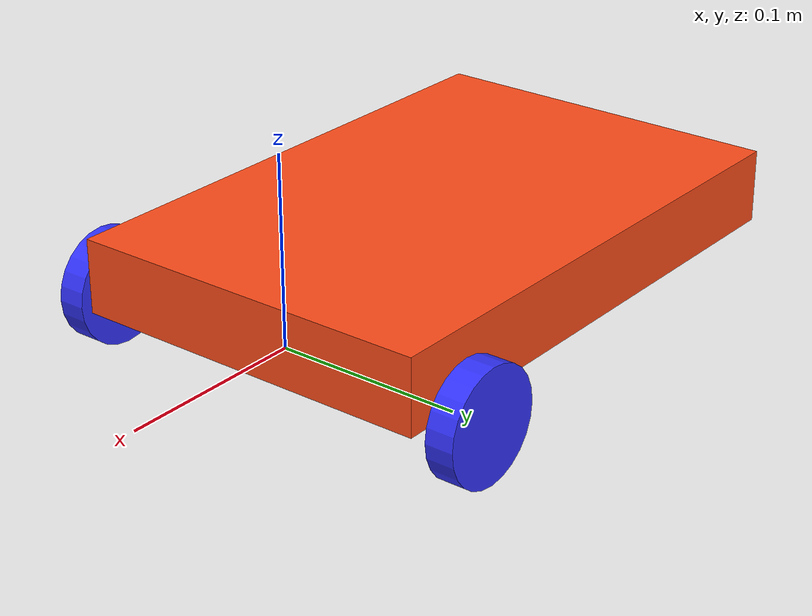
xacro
<?xml version="1.0"?>
<robot xmlns:xacro="http://www.ros.org/wiki/xacro">

    <xacro:include filename="inertial_macros.xacro"/>

    <xacro:property name="chassis_length" value="0.335"/>
    <xacro:property name="chassis_width" value="0.265"/>
    <xacro:property name="chassis_height" value="0.138"/>
    <xacro:property name="chassis_mass" value="1.0"/>
    <xacro:property name="wheel_radius" value="0.033"/>
    <xacro:property name="wheel_thickness" value="0.026"/>
    <xacro:property name="wheel_mass" value="0.05"/>
    <xacro:property name="wheel_offset_x" value="0.226"/>
    <xacro:property name="wheel_offset_y" value="0.1485"/>
    <xacro:property name="wheel_offset_z" value="0.01"/>
    <xacro:property name="caster_wheel_radius" value="0.01"/>
    <xacro:property name="caster_wheel_mass" value="0.01"/>
    <xacro:property name="caster_wheel_offset_x" value="0.075"/>
    <xacro:property name="caster_wheel_offset_z" value="${wheel_offset_z - wheel_radius + caster_wheel_radius}"/>

    <material name="white">
        <color rgba="1.0 1.0 1.0 1.0"/>
    </material>

    <material name="orange">
        <color rgba="1 0.3 0.1 1"/>
    </material>

    <material name="blue">
        <color rgba="0.2 0.2 1 1"/>
    </material>

    <material name="black">
        <color rgba="0 0 0 1"/>
    </material>

    <material name="red">
        <color rgba="1 0 0 1"/>
    </material>

    <!-- BASE LINK -->

    <link name="base_link">

    </link>

    <!-- BASE_FOOTPRINT LINK -->

    <joint name="base_footprint_joint" type="fixed">
        <origin xyz="0.0 0.0 0.0" rpy="0.0 0.0 0.0"/>
        <parent link="base_link"/>
        <child link="base_footprint"/>
    </joint>

    <link name="base_footprint">
    </link>

    <!-- CHASSIS LINK -->

    <joint name="chassis_joint" type="fixed">
        <parent link="base_link"/>
        <child link="chassis"/>
        <origin xyz="-0.12 0 0"/>
    </joint>

    <link name="chassis">
        <visual>
            <origin xyz="0 0 0.02"/>
            <geometry>
                <box size="0.3 0.2 0.04"/>
            </geometry>
            <material name="orange"/>
        </visual>
        <collision>
            <origin xyz="0 0 0.02"/>
            <geometry>
                <box size="0.3 0.2 0.04"/>
            </geometry>
        </collision>
        <xacro:inertial_box mass="0.5" x="0.3" y="0.2" z="0.04">
            <origin xyz="0 0 0.02" rpy="0.0 0.0 0.0"/>
        </xacro:inertial_box>
    </link>

    <gazebo reference="chassis">
        <material>Gazebo/Orange</material>
    </gazebo>

    <!-- LEFT WHEEL LINK-->

    <joint name="left_wheel_joint" type="continuous">
        <parent link="base_link"/>
        <child link="left_wheel"/>
        <origin xyz="0.0 0.115 0.0" rpy="-${pi/2} 0.0 0.0"/>
        <axis xyz="0.0 0.0 1.0"/>
    </joint>

    <link name="left_wheel">
        <visual>
            <geometry>
                <cylinder radius="0.03" length="0.015"/>
            </geometry>
            <material name="blue"/>
        </visual>
        <collision>
            <geometry>
                <cylinder radius="0.03" length="0.015"/>
            </geometry>
        </collision>
        <xacro:inertial_cylinder mass="0.1" length="0.015" radius="0.03">
            <origin xyz="0.0 0.0 0.0" rpy="0.0 0.0 0.0"/>
        </xacro:inertial_cylinder>
    </link>

    <gazebo reference="left_wheel">
        <material>Gazebo/Blue</material>
    </gazebo>

    <!-- RIGHT WHEEL LINK-->

    <joint name="right_wheel_joint" type="continuous">
        <parent link="base_link"/>
        <child link="right_wheel"/>
        <origin xyz="0.0 -0.115 0.0" rpy="${pi/2} 0.0 0.0"/>
        <axis xyz="0.0 0.0 -1.0"/>
    </joint>

    <link name="right_wheel">
        <visual>
            <geometry>
                <cylinder radius="0.03" length="0.015"/>
            </geometry>
            <material name="blue"/>
        </visual>
        <collision>
            <geometry>
                <cylinder radius="0.03" length="0.015"/>
            </geometry>
        </collision>
        <xacro:inertial_cylinder mass="0.1" length="0.015" radius="0.03">
            <origin xyz="0.0 0.0 0.0" rpy="0.0 0.0 0.0"/>
        </xacro:inertial_cylinder>
    </link>

    <gazebo reference="right_wheel">
        <material>Gazebo/Blue</material>
    </gazebo>

    <!-- CASTER WHEEL LINK -->

    <joint name="caster_wheel_joint" type="fixed">
        <parent link="chassis"/>
        <child link="caster_wheel"/>
        <origin xyz="-0.1 0 0"/>
    </joint>

    <link name="caster_wheel">
        <visual>
            <geometry>
                <sphere radius="0.03"/>
            </geometry>
            <material name="white"/>
        </visual>
        <collision>
            <geometry>
                <sphere radius="0.03"/>
            </geometry>
        </collision>
        <xacro:inertial_sphere mass="0.1" radius="0.03">
            <origin xyz="0.0 0.0 0.0" rpy="0.0 0.0 0.0"/>
        </xacro:inertial_sphere>
    </link>

    <gazebo reference="caster_wheel">
        <material>Gazebo/White</material>
        <mu1 value="0.001"/>
        <mu2 value="0.001"/>
    </gazebo>

</robot>
